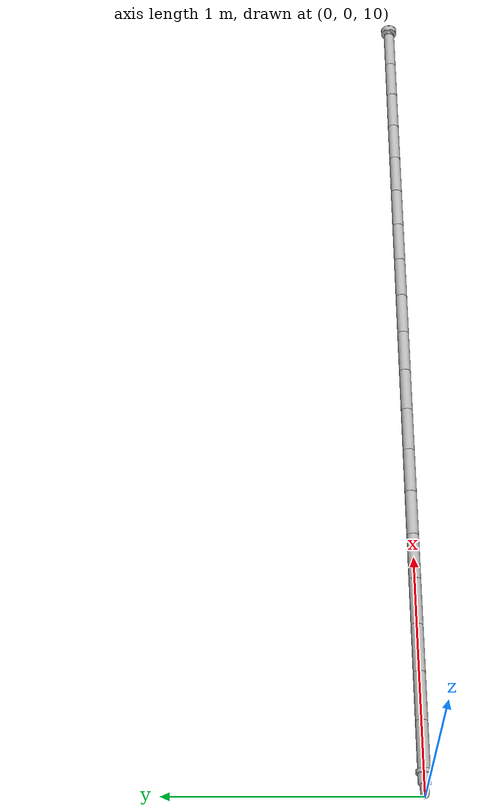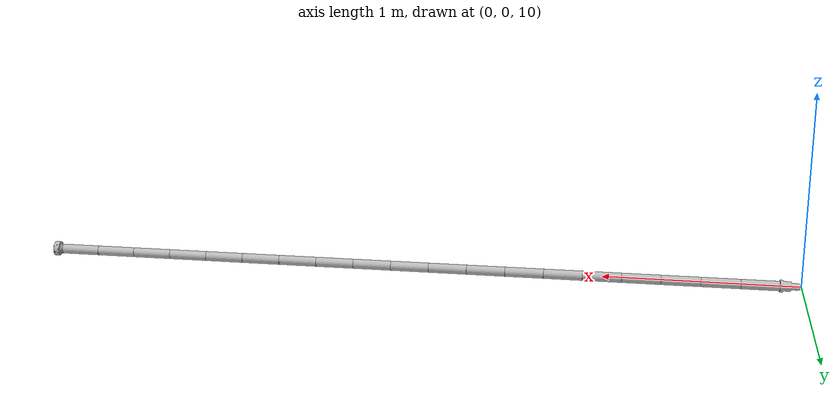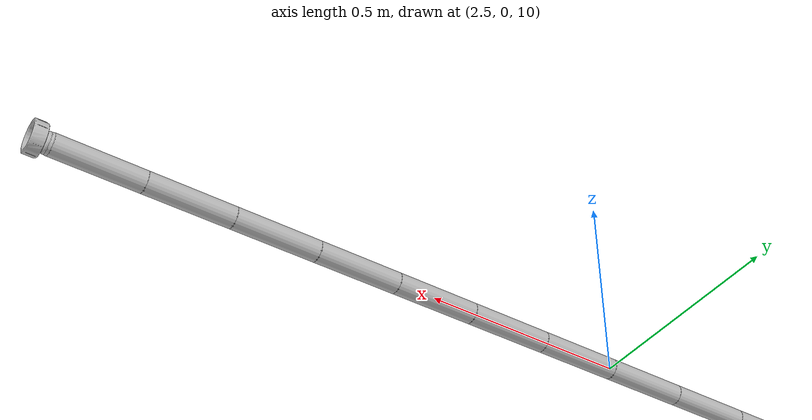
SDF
<?xml version="1.0" ?>
<sdf version="1.5">
  <model name="fire_hose_long">
    <pose>0 0 10 0.708 0 0</pose>
    <joint name="joint_01_world" type="revolute">
      <child>nozzle</child>
      <parent>world</parent>
      <axis>
        <xyz>0.500000 1.000000 0.200000</xyz>
        <dynamics>
          <damping>10.000000</damping>
          <friction>0.000000</friction>
        </dynamics>
        <use_parent_model_frame>true</use_parent_model_frame>
      </axis>
    </joint>
    <link name="nozzle">
      <pose>0.000000 0.000000 0.000000 0.000000 -0.000000 0.000000</pose>
      <inertial>
        <pose>0.000000 0.000000 0.000000 0.000000 -0.000000 0.000000</pose>
        <mass>0.100000</mass>
        <inertia>
          <ixx>0.010000</ixx>
          <ixy>0.000000</ixy>
          <ixz>0.000000</ixz>
          <iyy>0.010000</iyy>
          <iyz>0.000000</iyz>
          <izz>0.010000</izz>
        </inertia>
      </inertial>
      <collision name="nozzle_collision">
        <pose>-0.000000 0.000000 0.000000 0.000000 -0.000000 0.000000</pose>
        <geometry>
          <mesh>
            <scale>0.002540 0.002540 0.002540</scale>
            <uri>model://fire_hose_long/meshes/nozzle.stl</uri>
          </mesh>
        </geometry>
      </collision>
      <visual name="nozzle_vis">
        <pose>-0.000000 0.000000 0.000000 0.000000 -0.000000 0.000000</pose>
        <geometry>
          <mesh>
            <scale>0.002540 0.002540 0.002540</scale>
            <uri>model://fire_hose_long/meshes/nozzle.stl</uri>
          </mesh>
        </geometry>
      </visual>
      <velocity_decay />
    </link>
    <link name="sphere_01">
      <gravity>false</gravity>
      <pose>0.100000 0.000000 0.000000 0.000000 -0.000000 0.000000</pose>
      <inertial>
        <pose>0.000000 0.000000 0.000000 0.000000 -0.000000 0.000000</pose>
        <mass>0.100000</mass>
        <inertia>
          <ixx>0.010000</ixx>
          <ixy>0.000000</ixy>
          <ixz>0.000000</ixz>
          <iyy>0.010000</iyy>
          <iyz>0.000000</iyz>
          <izz>0.010000</izz>
        </inertia>
      </inertial>
      <collision name="sphere_01_collision">
        <pose>0.000000 0.000000 0.000000 0.000000 -0.000000 0.000000</pose>
        <geometry>
          <sphere>
            <radius>0.025000</radius>
          </sphere>
        </geometry>
      </collision>
      <visual name="sphere_01_vis">
        <pose>0.000000 0.000000 0.000000 0.000000 -0.000000 0.000000</pose>
        <geometry>
          <sphere>
            <radius>0.025000</radius>
          </sphere>
        </geometry>
      </visual>
      <velocity_decay />
    </link>
    <joint name="joint_01_1" type="revolute">
      <child>sphere_01</child>
      <parent>nozzle</parent>
      <axis>
        <xyz>0.000000 0.000000 1.000000</xyz>
        <limit>
          <lower>-0.700000</lower>
          <upper>0.700000</upper>
        </limit>
        <dynamics>
          <damping>10.000000</damping>
          <friction>0.000000</friction>
        </dynamics>
        <use_parent_model_frame>true</use_parent_model_frame>
      </axis>
    </joint>
    <link name="link_01">
      <gravity>false</gravity>
      <pose>0.100000 0.000000 0.000000 0.000000 -0.000000 0.000000</pose>
      <inertial>
        <pose>0.000000 0.000000 0.000000 0.000000 -0.000000 0.000000</pose>
        <mass>0.100000</mass>
        <inertia>
          <ixx>0.010000</ixx>
          <ixy>0.000000</ixy>
          <ixz>0.000000</ixz>
          <iyy>0.010000</iyy>
          <iyz>0.000000</iyz>
          <izz>0.010000</izz>
        </inertia>
      </inertial>
      <collision name="link_01_collision">
        <pose>0.100000 0.000000 0.000000 0.000000 1.570790 0.000000</pose>
        <geometry>
          <cylinder>
            <length>0.200000</length>
            <radius>0.025000</radius>
          </cylinder>
        </geometry>
      </collision>
      <visual name="link_01_vis">
        <pose>0.100000 0.000000 0.000000 0.000000 1.570790 0.000000</pose>
        <geometry>
          <cylinder>
            <length>0.200000</length>
            <radius>0.025000</radius>
          </cylinder>
        </geometry>
      </visual>
      <velocity_decay />
    </link>
    <joint name="joint_01_2" type="revolute">
      <child>link_01</child>
      <parent>sphere_01</parent>
      <axis>
        <xyz>0.000000 1.000000 0.000000</xyz>
        <limit>
          <lower>-0.700000</lower>
          <upper>0.700000</upper>
        </limit>
        <dynamics>
          <damping>10.000000</damping>
          <friction>0.000000</friction>
        </dynamics>
        <use_parent_model_frame>true</use_parent_model_frame>
      </axis>
    </joint>
    <link name="sphere_02">
      <gravity>false</gravity>
      <pose>0.300000 0.000000 0.000000 0.000000 -0.000000 0.000000</pose>
      <inertial>
        <pose>0.000000 0.000000 0.000000 0.000000 -0.000000 0.000000</pose>
        <mass>0.100000</mass>
        <inertia>
          <ixx>0.010000</ixx>
          <ixy>0.000000</ixy>
          <ixz>0.000000</ixz>
          <iyy>0.010000</iyy>
          <iyz>0.000000</iyz>
          <izz>0.010000</izz>
        </inertia>
      </inertial>
      <collision name="sphere_02_collision">
        <pose>0.000000 0.000000 0.000000 0.000000 -0.000000 0.000000</pose>
        <geometry>
          <sphere>
            <radius>0.025000</radius>
          </sphere>
        </geometry>
      </collision>
      <visual name="sphere_02_vis">
        <pose>0.000000 0.000000 0.000000 0.000000 -0.000000 0.000000</pose>
        <geometry>
          <sphere>
            <radius>0.025000</radius>
          </sphere>
        </geometry>
      </visual>
      <velocity_decay />
    </link>
    <joint name="joint_02_1" type="revolute">
      <child>sphere_02</child>
      <parent>link_01</parent>
      <axis>
        <xyz>0.000000 0.000000 1.000000</xyz>
        <limit>
          <lower>-0.700000</lower>
          <upper>0.700000</upper>
        </limit>
        <dynamics>
          <damping>10.000000</damping>
          <friction>0.000000</friction>
        </dynamics>
        <use_parent_model_frame>true</use_parent_model_frame>
      </axis>
    </joint>
    <link name="link_02">
      <gravity>false</gravity>
      <pose>0.300000 0.000000 0.000000 0.000000 -0.000000 0.000000</pose>
      <inertial>
        <pose>0.000000 0.000000 0.000000 0.000000 -0.000000 0.000000</pose>
        <mass>0.100000</mass>
        <inertia>
          <ixx>0.010000</ixx>
          <ixy>0.000000</ixy>
          <ixz>0.000000</ixz>
          <iyy>0.010000</iyy>
          <iyz>0.000000</iyz>
          <izz>0.010000</izz>
        </inertia>
      </inertial>
      <collision name="link_02_collision">
        <pose>0.100000 0.000000 0.000000 0.000000 1.570790 0.000000</pose>
        <geometry>
          <cylinder>
            <length>0.200000</length>
            <radius>0.025000</radius>
          </cylinder>
        </geometry>
      </collision>
      <visual name="link_02_vis">
        <pose>0.100000 0.000000 0.000000 0.000000 1.570790 0.000000</pose>
        <geometry>
          <cylinder>
            <length>0.200000</length>
            <radius>0.025000</radius>
          </cylinder>
        </geometry>
      </visual>
      <velocity_decay />
    </link>
    <joint name="joint_02_2" type="revolute">
      <child>link_02</child>
      <parent>sphere_02</parent>
      <axis>
        <xyz>0.000000 1.000000 0.000000</xyz>
        <limit>
          <lower>-0.700000</lower>
          <upper>0.700000</upper>
        </limit>
        <dynamics>
          <damping>10.000000</damping>
          <friction>0.000000</friction>
        </dynamics>
        <use_parent_model_frame>true</use_parent_model_frame>
      </axis>
    </joint>
    <link name="sphere_03">
      <gravity>false</gravity>
      <pose>0.500000 0.000000 0.000000 0.000000 -0.000000 0.000000</pose>
      <inertial>
        <pose>0.000000 0.000000 0.000000 0.000000 -0.000000 0.000000</pose>
        <mass>0.100000</mass>
        <inertia>
          <ixx>0.010000</ixx>
          <ixy>0.000000</ixy>
          <ixz>0.000000</ixz>
          <iyy>0.010000</iyy>
          <iyz>0.000000</iyz>
          <izz>0.010000</izz>
        </inertia>
      </inertial>
      <collision name="sphere_03_collision">
        <pose>0.000000 0.000000 0.000000 0.000000 -0.000000 0.000000</pose>
        <geometry>
          <sphere>
            <radius>0.025000</radius>
          </sphere>
        </geometry>
      </collision>
      <visual name="sphere_03_vis">
        <pose>0.000000 0.000000 0.000000 0.000000 -0.000000 0.000000</pose>
        <geometry>
          <sphere>
            <radius>0.025000</radius>
          </sphere>
        </geometry>
      </visual>
      <velocity_decay />
    </link>
    <joint name="joint_03_1" type="revolute">
      <child>sphere_03</child>
      <parent>link_02</parent>
      <axis>
        <xyz>0.000000 0.000000 1.000000</xyz>
        <limit>
          <lower>-0.700000</lower>
          <upper>0.700000</upper>
        </limit>
        <dynamics>
          <damping>10.000000</damping>
          <friction>0.000000</friction>
        </dynamics>
        <use_parent_model_frame>true</use_parent_model_frame>
      </axis>
    </joint>
    <link name="link_03">
      <gravity>false</gravity>
      <pose>0.500000 0.000000 0.000000 0.000000 -0.000000 0.000000</pose>
      <inertial>
        <pose>0.000000 0.000000 0.000000 0.000000 -0.000000 0.000000</pose>
        <mass>0.100000</mass>
        <inertia>
          <ixx>0.010000</ixx>
          <ixy>0.000000</ixy>
          <ixz>0.000000</ixz>
          <iyy>0.010000</iyy>
          <iyz>0.000000</iyz>
          <izz>0.010000</izz>
        </inertia>
      </inertial>
      <collision name="link_03_collision">
        <pose>0.100000 0.000000 0.000000 0.000000 1.570790 0.000000</pose>
        <geometry>
          <cylinder>
            <length>0.200000</length>
            <radius>0.025000</radius>
          </cylinder>
        </geometry>
      </collision>
      <visual name="link_03_vis">
        <pose>0.100000 0.000000 0.000000 0.000000 1.570790 0.000000</pose>
        <geometry>
          <cylinder>
            <length>0.200000</length>
            <radius>0.025000</radius>
          </cylinder>
        </geometry>
      </visual>
      <velocity_decay />
    </link>
    <joint name="joint_03_2" type="revolute">
      <child>link_03</child>
      <parent>sphere_03</parent>
      <axis>
        <xyz>0.000000 1.000000 0.000000</xyz>
        <limit>
          <lower>-0.700000</lower>
          <upper>0.700000</upper>
        </limit>
        <dynamics>
          <damping>10.000000</damping>
          <friction>0.000000</friction>
        </dynamics>
        <use_parent_model_frame>true</use_parent_model_frame>
      </axis>
    </joint>
    <link name="sphere_04">
      <gravity>false</gravity>
      <pose>0.700000 0.000000 0.000000 0.000000 -0.000000 0.000000</pose>
      <inertial>
        <pose>0.000000 0.000000 0.000000 0.000000 -0.000000 0.000000</pose>
        <mass>0.100000</mass>
        <inertia>
          <ixx>0.010000</ixx>
          <ixy>0.000000</ixy>
          <ixz>0.000000</ixz>
          <iyy>0.010000</iyy>
          <iyz>0.000000</iyz>
          <izz>0.010000</izz>
        </inertia>
      </inertial>
      <collision name="sphere_04_collision">
        <pose>0.000000 0.000000 0.000000 0.000000 -0.000000 0.000000</pose>
        <geometry>
          <sphere>
            <radius>0.025000</radius>
          </sphere>
        </geometry>
      </collision>
      <visual name="sphere_04_vis">
        <pose>0.000000 0.000000 0.000000 0.000000 -0.000000 0.000000</pose>
        <geometry>
          <sphere>
            <radius>0.025000</radius>
          </sphere>
        </geometry>
      </visual>
      <velocity_decay />
    </link>
    <joint name="joint_04_1" type="revolute">
      <child>sphere_04</child>
      <parent>link_03</parent>
      <axis>
        <xyz>0.000000 0.000000 1.000000</xyz>
        <limit>
          <lower>-0.700000</lower>
          <upper>0.700000</upper>
        </limit>
        <dynamics>
          <damping>10.000000</damping>
          <friction>0.000000</friction>
        </dynamics>
        <use_parent_model_frame>true</use_parent_model_frame>
      </axis>
    </joint>
    <link name="link_04">
      <gravity>false</gravity>
      <pose>0.700000 0.000000 0.000000 0.000000 -0.000000 0.000000</pose>
      <inertial>
        <pose>0.000000 0.000000 0.000000 0.000000 -0.000000 0.000000</pose>
        <mass>0.100000</mass>
        <inertia>
          <ixx>0.010000</ixx>
          <ixy>0.000000</ixy>
          <ixz>0.000000</ixz>
          <iyy>0.010000</iyy>
          <iyz>0.000000</iyz>
          <izz>0.010000</izz>
        </inertia>
      </inertial>
      <collision name="link_04_collision">
        <pose>0.100000 0.000000 0.000000 0.000000 1.570790 0.000000</pose>
        <geometry>
          <cylinder>
            <length>0.200000</length>
            <radius>0.025000</radius>
          </cylinder>
        </geometry>
      </collision>
      <visual name="link_04_vis">
        <pose>0.100000 0.000000 0.000000 0.000000 1.570790 0.000000</pose>
        <geometry>
          <cylinder>
            <length>0.200000</length>
            <radius>0.025000</radius>
          </cylinder>
        </geometry>
      </visual>
      <velocity_decay />
    </link>
    <joint name="joint_04_2" type="revolute">
      <child>link_04</child>
      <parent>sphere_04</parent>
      <axis>
        <xyz>0.000000 1.000000 0.000000</xyz>
        <limit>
          <lower>-0.700000</lower>
          <upper>0.700000</upper>
        </limit>
        <dynamics>
          <damping>10.000000</damping>
          <friction>0.000000</friction>
        </dynamics>
        <use_parent_model_frame>true</use_parent_model_frame>
      </axis>
    </joint>
    <link name="sphere_05">
      <gravity>false</gravity>
      <pose>0.900000 0.000000 0.000000 0.000000 -0.000000 0.000000</pose>
      <inertial>
        <pose>0.000000 0.000000 0.000000 0.000000 -0.000000 0.000000</pose>
        <mass>0.100000</mass>
        <inertia>
          <ixx>0.010000</ixx>
          <ixy>0.000000</ixy>
          <ixz>0.000000</ixz>
          <iyy>0.010000</iyy>
          <iyz>0.000000</iyz>
          <izz>0.010000</izz>
        </inertia>
      </inertial>
      <collision name="sphere_05_collision">
        <pose>0.000000 0.000000 0.000000 0.000000 -0.000000 0.000000</pose>
        <geometry>
          <sphere>
            <radius>0.025000</radius>
          </sphere>
        </geometry>
      </collision>
      <visual name="sphere_05_vis">
        <pose>0.000000 0.000000 0.000000 0.000000 -0.000000 0.000000</pose>
        <geometry>
          <sphere>
            <radius>0.025000</radius>
          </sphere>
        </geometry>
      </visual>
      <velocity_decay />
    </link>
    <joint name="joint_05_1" type="revolute">
      <child>sphere_05</child>
      <parent>link_04</parent>
      <axis>
        <xyz>0.000000 0.000000 1.000000</xyz>
        <limit>
          <lower>-0.700000</lower>
          <upper>0.700000</upper>
        </limit>
        <dynamics>
          <damping>10.000000</damping>
          <friction>0.000000</friction>
        </dynamics>
        <use_parent_model_frame>true</use_parent_model_frame>
      </axis>
    </joint>
    <link name="link_05">
      <gravity>false</gravity>
      <pose>0.900000 0.000000 0.000000 0.000000 -0.000000 0.000000</pose>
      <inertial>
        <pose>0.000000 0.000000 0.000000 0.000000 -0.000000 0.000000</pose>
        <mass>0.100000</mass>
        <inertia>
          <ixx>0.010000</ixx>
          <ixy>0.000000</ixy>
          <ixz>0.000000</ixz>
          <iyy>0.010000</iyy>
          <iyz>0.000000</iyz>
          <izz>0.010000</izz>
        </inertia>
      </inertial>
      <collision name="link_05_collision">
        <pose>0.100000 0.000000 0.000000 0.000000 1.570790 0.000000</pose>
        <geometry>
          <cylinder>
            <length>0.200000</length>
            <radius>0.025000</radius>
          </cylinder>
        </geometry>
      </collision>
      <visual name="link_05_vis">
        <pose>0.100000 0.000000 0.000000 0.000000 1.570790 0.000000</pose>
        <geometry>
          <cylinder>
            <length>0.200000</length>
            <radius>0.025000</radius>
          </cylinder>
        </geometry>
      </visual>
      <velocity_decay />
    </link>
    <joint name="joint_05_2" type="revolute">
      <child>link_05</child>
      <parent>sphere_05</parent>
      <axis>
        <xyz>0.000000 1.000000 0.000000</xyz>
        <limit>
          <lower>-0.700000</lower>
          <upper>0.700000</upper>
        </limit>
        <dynamics>
          <damping>10.000000</damping>
          <friction>0.000000</friction>
        </dynamics>
        <use_parent_model_frame>true</use_parent_model_frame>
      </axis>
    </joint>
    <link name="sphere_06">
      <gravity>false</gravity>
      <pose>1.100000 0.000000 0.000000 0.000000 -0.000000 0.000000</pose>
      <inertial>
        <pose>0.000000 0.000000 0.000000 0.000000 -0.000000 0.000000</pose>
        <mass>0.100000</mass>
        <inertia>
          <ixx>0.010000</ixx>
          <ixy>0.000000</ixy>
          <ixz>0.000000</ixz>
          <iyy>0.010000</iyy>
          <iyz>0.000000</iyz>
          <izz>0.010000</izz>
        </inertia>
      </inertial>
      <collision name="sphere_06_collision">
        <pose>0.000000 0.000000 0.000000 0.000000 -0.000000 0.000000</pose>
        <geometry>
          <sphere>
            <radius>0.025000</radius>
          </sphere>
        </geometry>
      </collision>
      <visual name="sphere_06_vis">
        <pose>0.000000 0.000000 0.000000 0.000000 -0.000000 0.000000</pose>
        <geometry>
          <sphere>
            <radius>0.025000</radius>
          </sphere>
        </geometry>
      </visual>
      <velocity_decay />
    </link>
    <joint name="joint_06_1" type="revolute">
      <child>sphere_06</child>
      <parent>link_05</parent>
      <axis>
        <xyz>0.000000 0.000000 1.000000</xyz>
        <limit>
          <lower>-0.700000</lower>
          <upper>0.700000</upper>
        </limit>
        <dynamics>
          <damping>10.000000</damping>
          <friction>0.000000</friction>
        </dynamics>
        <use_parent_model_frame>true</use_parent_model_frame>
      </axis>
    </joint>
    <link name="link_06">
      <gravity>false</gravity>
      <pose>1.100000 0.000000 0.000000 0.000000 -0.000000 0.000000</pose>
      <inertial>
        <pose>0.000000 0.000000 0.000000 0.000000 -0.000000 0.000000</pose>
        <mass>0.100000</mass>
        <inertia>
          <ixx>0.010000</ixx>
          <ixy>0.000000</ixy>
          <ixz>0.000000</ixz>
          <iyy>0.010000</iyy>
          <iyz>0.000000</iyz>
          <izz>0.010000</izz>
        </inertia>
      </inertial>
      <collision name="link_06_collision">
        <pose>0.100000 0.000000 0.000000 0.000000 1.570790 0.000000</pose>
        <geometry>
          <cylinder>
            <length>0.200000</length>
            <radius>0.025000</radius>
          </cylinder>
        </geometry>
      </collision>
      <visual name="link_06_vis">
        <pose>0.100000 0.000000 0.000000 0.000000 1.570790 0.000000</pose>
        <geometry>
          <cylinder>
            <length>0.200000</length>
            <radius>0.025000</radius>
          </cylinder>
        </geometry>
      </visual>
      <velocity_decay />
    </link>
    <joint name="joint_06_2" type="revolute">
      <child>link_06</child>
      <parent>sphere_06</parent>
      <axis>
        <xyz>0.000000 1.000000 0.000000</xyz>
        <limit>
          <lower>-0.700000</lower>
          <upper>0.700000</upper>
        </limit>
        <dynamics>
          <damping>10.000000</damping>
          <friction>0.000000</friction>
        </dynamics>
        <use_parent_model_frame>true</use_parent_model_frame>
      </axis>
    </joint>
    <link name="sphere_07">
      <gravity>false</gravity>
      <pose>1.300000 0.000000 0.000000 0.000000 -0.000000 0.000000</pose>
      <inertial>
        <pose>0.000000 0.000000 0.000000 0.000000 -0.000000 0.000000</pose>
        <mass>0.100000</mass>
        <inertia>
          <ixx>0.010000</ixx>
          <ixy>0.000000</ixy>
          <ixz>0.000000</ixz>
          <iyy>0.010000</iyy>
          <iyz>0.000000</iyz>
          <izz>0.010000</izz>
        </inertia>
      </inertial>
      <collision name="sphere_07_collision">
        <pose>0.000000 0.000000 0.000000 0.000000 -0.000000 0.000000</pose>
        <geometry>
          <sphere>
            <radius>0.025000</radius>
          </sphere>
        </geometry>
      </collision>
      <visual name="sphere_07_vis">
        <pose>0.000000 0.000000 0.000000 0.000000 -0.000000 0.000000</pose>
        <geometry>
          <sphere>
            <radius>0.025000</radius>
          </sphere>
        </geometry>
      </visual>
      <velocity_decay />
    </link>
    <joint name="joint_07_1" type="revolute">
      <child>sphere_07</child>
      <parent>link_06</parent>
      <axis>
        <xyz>0.000000 0.000000 1.000000</xyz>
        <limit>
          <lower>-0.700000</lower>
          <upper>0.700000</upper>
        </limit>
        <dynamics>
          <damping>10.000000</damping>
          <friction>0.000000</friction>
        </dynamics>
        <use_parent_model_frame>true</use_parent_model_frame>
      </axis>
    </joint>
    <link name="link_07">
      <gravity>false</gravity>
      <pose>1.300000 0.000000 0.000000 0.000000 -0.000000 0.000000</pose>
      <inertial>
        <pose>0.000000 0.000000 0.000000 0.000000 -0.000000 0.000000</pose>
        <mass>0.100000</mass>
        <inertia>
          <ixx>0.010000</ixx>
          <ixy>0.000000</ixy>
          <ixz>0.000000</ixz>
          <iyy>0.010000</iyy>
          <iyz>0.000000</iyz>
          <izz>0.010000</izz>
        </inertia>
      </inertial>
      <collision name="link_07_collision">
        <pose>0.100000 0.000000 0.000000 0.000000 1.570790 0.000000</pose>
        <geometry>
          <cylinder>
            <length>0.200000</length>
            <radius>0.025000</radius>
          </cylinder>
        </geometry>
      </collision>
      <visual name="link_07_vis">
        <pose>0.100000 0.000000 0.000000 0.000000 1.570790 0.000000</pose>
        <geometry>
          <cylinder>
            <length>0.200000</length>
            <radius>0.025000</radius>
          </cylinder>
        </geometry>
      </visual>
      <velocity_decay />
    </link>
    <joint name="joint_07_2" type="revolute">
      <child>link_07</child>
      <parent>sphere_07</parent>
      <axis>
        <xyz>0.000000 1.000000 0.000000</xyz>
        <limit>
          <lower>-0.700000</lower>
          <upper>0.700000</upper>
        </limit>
        <dynamics>
          <damping>10.000000</damping>
          <friction>0.000000</friction>
        </dynamics>
        <use_parent_model_frame>true</use_parent_model_frame>
      </axis>
    </joint>
    <link name="sphere_08">
      <gravity>false</gravity>
      <pose>1.500000 0.000000 0.000000 0.000000 -0.000000 0.000000</pose>
      <inertial>
        <pose>0.000000 0.000000 0.000000 0.000000 -0.000000 0.000000</pose>
        <mass>0.100000</mass>
        <inertia>
          <ixx>0.010000</ixx>
          <ixy>0.000000</ixy>
          <ixz>0.000000</ixz>
          <iyy>0.010000</iyy>
          <iyz>0.000000</iyz>
          <izz>0.010000</izz>
        </inertia>
      </inertial>
      <collision name="sphere_08_collision">
        <pose>0.000000 0.000000 0.000000 0.000000 -0.000000 0.000000</pose>
        <geometry>
          <sphere>
            <radius>0.025000</radius>
          </sphere>
        </geometry>
      </collision>
      <visual name="sphere_08_vis">
        <pose>0.000000 0.000000 0.000000 0.000000 -0.000000 0.000000</pose>
        <geometry>
          <sphere>
            <radius>0.025000</radius>
          </sphere>
        </geometry>
      </visual>
      <velocity_decay />
    </link>
    <joint name="joint_08_1" type="revolute">
      <child>sphere_08</child>
      <parent>link_07</parent>
      <axis>
        <xyz>0.000000 0.000000 1.000000</xyz>
        <limit>
          <lower>-0.700000</lower>
          <upper>0.700000</upper>
        </limit>
        <dynamics>
          <damping>10.000000</damping>
          <friction>0.000000</friction>
        </dynamics>
        <use_parent_model_frame>true</use_parent_model_frame>
      </axis>
    </joint>
    <link name="link_08">
      <gravity>false</gravity>
      <pose>1.500000 0.000000 0.000000 0.000000 -0.000000 0.000000</pose>
      <inertial>
        <pose>0.000000 0.000000 0.000000 0.000000 -0.000000 0.000000</pose>
        <mass>0.100000</mass>
        <inertia>
          <ixx>0.010000</ixx>
          <ixy>0.000000</ixy>
          <ixz>0.000000</ixz>
          <iyy>0.010000</iyy>
          <iyz>0.000000</iyz>
          <izz>0.010000</izz>
        </inertia>
      </inertial>
      <collision name="link_08_collision">
        <pose>0.100000 0.000000 0.000000 0.000000 1.570790 0.000000</pose>
        <geometry>
          <cylinder>
            <length>0.200000</length>
            <radius>0.025000</radius>
          </cylinder>
        </geometry>
      </collision>
      <visual name="link_08_vis">
        <pose>0.100000 0.000000 0.000000 0.000000 1.570790 0.000000</pose>
        <geometry>
          <cylinder>
            <length>0.200000</length>
            <radius>0.025000</radius>
          </cylinder>
        </geometry>
      </visual>
      <velocity_decay />
    </link>
    <joint name="joint_08_2" type="revolute">
      <child>link_08</child>
      <parent>sphere_08</parent>
      <axis>
        <xyz>0.000000 1.000000 0.000000</xyz>
        <limit>
          <lower>-0.700000</lower>
          <upper>0.700000</upper>
        </limit>
        <dynamics>
          <damping>10.000000</damping>
          <friction>0.000000</friction>
        </dynamics>
        <use_parent_model_frame>true</use_parent_model_frame>
      </axis>
    </joint>
    <link name="sphere_09">
      <gravity>false</gravity>
      <pose>1.700000 0.000000 0.000000 0.000000 -0.000000 0.000000</pose>
      <inertial>
        <pose>0.000000 0.000000 0.000000 0.000000 -0.000000 0.000000</pose>
        <mass>0.100000</mass>
        <inertia>
          <ixx>0.010000</ixx>
          <ixy>0.000000</ixy>
          <ixz>0.000000</ixz>
          <iyy>0.010000</iyy>
          <iyz>0.000000</iyz>
          <izz>0.010000</izz>
        </inertia>
      </inertial>
      <collision name="sphere_09_collision">
        <pose>0.000000 0.000000 0.000000 0.000000 -0.000000 0.000000</pose>
        <geometry>
          <sphere>
            <radius>0.025000</radius>
          </sphere>
        </geometry>
      </collision>
      <visual name="sphere_09_vis">
        <pose>0.000000 0.000000 0.000000 0.000000 -0.000000 0.000000</pose>
        <geometry>
          <sphere>
            <radius>0.025000</radius>
          </sphere>
        </geometry>
      </visual>
      <velocity_decay />
    </link>
    <joint name="joint_09_1" type="revolute">
      <child>sphere_09</child>
      <parent>link_08</parent>
      <axis>
        <xyz>0.000000 0.000000 1.000000</xyz>
        <limit>
          <lower>-0.700000</lower>
          <upper>0.700000</upper>
        </limit>
        <dynamics>
          <damping>10.000000</damping>
          <friction>0.000000</friction>
        </dynamics>
        <use_parent_model_frame>true</use_parent_model_frame>
      </axis>
    </joint>
    <link name="link_09">
      <gravity>false</gravity>
      <pose>1.700000 0.000000 0.000000 0.000000 -0.000000 0.000000</pose>
      <inertial>
        <pose>0.000000 0.000000 0.000000 0.000000 -0.000000 0.000000</pose>
        <mass>0.100000</mass>
        <inertia>
          <ixx>0.010000</ixx>
          <ixy>0.000000</ixy>
          <ixz>0.000000</ixz>
          <iyy>0.010000</iyy>
          <iyz>0.000000</iyz>
          <izz>0.010000</izz>
        </inertia>
      </inertial>
      <collision name="link_09_collision">
        <pose>0.100000 0.000000 0.000000 0.000000 1.570790 0.000000</pose>
        <geometry>
          <cylinder>
            <length>0.200000</length>
            <radius>0.025000</radius>
          </cylinder>
        </geometry>
      </collision>
      <visual name="link_09_vis">
        <pose>0.100000 0.000000 0.000000 0.000000 1.570790 0.000000</pose>
        <geometry>
          <cylinder>
            <length>0.200000</length>
            <radius>0.025000</radius>
          </cylinder>
        </geometry>
      </visual>
      <velocity_decay />
    </link>
    <joint name="joint_09_2" type="revolute">
      <child>link_09</child>
      <parent>sphere_09</parent>
      <axis>
        <xyz>0.000000 1.000000 0.000000</xyz>
        <limit>
          <lower>-0.700000</lower>
          <upper>0.700000</upper>
        </limit>
        <dynamics>
          <damping>10.000000</damping>
          <friction>0.000000</friction>
        </dynamics>
        <use_parent_model_frame>true</use_parent_model_frame>
      </axis>
    </joint>
    <link name="sphere_10">
      <gravity>false</gravity>
      <pose>1.900000 0.000000 0.000000 0.000000 -0.000000 0.000000</pose>
      <inertial>
        <pose>0.000000 0.000000 0.000000 0.000000 -0.000000 0.000000</pose>
        <mass>0.100000</mass>
        <inertia>
          <ixx>0.010000</ixx>
          <ixy>0.000000</ixy>
          <ixz>0.000000</ixz>
          <iyy>0.010000</iyy>
          <iyz>0.000000</iyz>
          <izz>0.010000</izz>
        </inertia>
      </inertial>
      <collision name="sphere_10_collision">
        <pose>0.000000 0.000000 0.000000 0.000000 -0.000000 0.000000</pose>
        <geometry>
          <sphere>
            <radius>0.025000</radius>
          </sphere>
        </geometry>
      </collision>
      <visual name="sphere_10_vis">
        <pose>0.000000 0.000000 0.000000 0.000000 -0.000000 0.000000</pose>
        <geometry>
          <sphere>
            <radius>0.025000</radius>
          </sphere>
        </geometry>
      </visual>
      <velocity_decay />
    </link>
    <joint name="joint_10_1" type="revolute">
      <child>sphere_10</child>
      <parent>link_09</parent>
      <axis>
        <xyz>0.000000 0.000000 1.000000</xyz>
        <limit>
          <lower>-0.700000</lower>
          <upper>0.700000</upper>
        </limit>
        <dynamics>
          <damping>10.000000</damping>
          <friction>0.000000</friction>
        </dynamics>
        <use_parent_model_frame>true</use_parent_model_frame>
      </axis>
    </joint>
    <link name="link_10">
      <gravity>false</gravity>
      <pose>1.900000 0.000000 0.000000 0.000000 -0.000000 0.000000</pose>
      <inertial>
        <pose>0.000000 0.000000 0.000000 0.000000 -0.000000 0.000000</pose>
        <mass>0.100000</mass>
        <inertia>
          <ixx>0.010000</ixx>
          <ixy>0.000000</ixy>
          <ixz>0.000000</ixz>
          <iyy>0.010000</iyy>
          <iyz>0.000000</iyz>
          <izz>0.010000</izz>
        </inertia>
      </inertial>
      <collision name="link_10_collision">
        <pose>0.100000 0.000000 0.000000 0.000000 1.570790 0.000000</pose>
        <geometry>
          <cylinder>
            <length>0.200000</length>
            <radius>0.025000</radius>
          </cylinder>
        </geometry>
      </collision>
      <visual name="link_10_vis">
        <pose>0.100000 0.000000 0.000000 0.000000 1.570790 0.000000</pose>
        <geometry>
          <cylinder>
            <length>0.200000</length>
            <radius>0.025000</radius>
          </cylinder>
        </geometry>
      </visual>
      <velocity_decay />
    </link>
    <joint name="joint_10_2" type="revolute">
      <child>link_10</child>
      <parent>sphere_10</parent>
      <axis>
        <xyz>0.000000 1.000000 0.000000</xyz>
        <limit>
          <lower>-0.700000</lower>
          <upper>0.700000</upper>
        </limit>
        <dynamics>
          <damping>10.000000</damping>
          <friction>0.000000</friction>
        </dynamics>
        <use_parent_model_frame>true</use_parent_model_frame>
      </axis>
    </joint>
    <link name="sphere_11">
      <gravity>false</gravity>
      <pose>2.100000 0.000000 0.000000 0.000000 -0.000000 0.000000</pose>
      <inertial>
        <pose>0.000000 0.000000 0.000000 0.000000 -0.000000 0.000000</pose>
        <mass>0.100000</mass>
        <inertia>
          <ixx>0.010000</ixx>
          <ixy>0.000000</ixy>
          <ixz>0.000000</ixz>
          <iyy>0.010000</iyy>
          <iyz>0.000000</iyz>
          <izz>0.010000</izz>
        </inertia>
      </inertial>
      <collision name="sphere_11_collision">
        <pose>0.000000 0.000000 0.000000 0.000000 -0.000000 0.000000</pose>
        <geometry>
          <sphere>
            <radius>0.025000</radius>
          </sphere>
        </geometry>
      </collision>
      <visual name="sphere_11_vis">
        <pose>0.000000 0.000000 0.000000 0.000000 -0.000000 0.000000</pose>
        <geometry>
          <sphere>
            <radius>0.025000</radius>
          </sphere>
        </geometry>
      </visual>
      <velocity_decay />
    </link>
    <joint name="joint_11_1" type="revolute">
      <child>sphere_11</child>
      <parent>link_10</parent>
      <axis>
        <xyz>0.000000 0.000000 1.000000</xyz>
        <limit>
          <lower>-0.700000</lower>
          <upper>0.700000</upper>
        </limit>
        <dynamics>
          <damping>10.000000</damping>
          <friction>0.000000</friction>
        </dynamics>
        <use_parent_model_frame>true</use_parent_model_frame>
      </axis>
    </joint>
    <link name="link_11">
      <gravity>false</gravity>
      <pose>2.100000 0.000000 0.000000 0.000000 -0.000000 0.000000</pose>
      <inertial>
        <pose>0.000000 0.000000 0.000000 0.000000 -0.000000 0.000000</pose>
        <mass>0.100000</mass>
        <inertia>
          <ixx>0.010000</ixx>
          <ixy>0.000000</ixy>
          <ixz>0.000000</ixz>
          <iyy>0.010000</iyy>
          <iyz>0.000000</iyz>
          <izz>0.010000</izz>
        </inertia>
      </inertial>
      <collision name="link_11_collision">
        <pose>0.100000 0.000000 0.000000 0.000000 1.570790 0.000000</pose>
        <geometry>
          <cylinder>
            <length>0.200000</length>
            <radius>0.025000</radius>
          </cylinder>
        </geometry>
      </collision>
      <visual name="link_11_vis">
        <pose>0.100000 0.000000 0.000000 0.000000 1.570790 0.000000</pose>
        <geometry>
          <cylinder>
            <length>0.200000</length>
            <radius>0.025000</radius>
          </cylinder>
        </geometry>
      </visual>
      <velocity_decay />
    </link>
    <joint name="joint_11_2" type="revolute">
      <child>link_11</child>
      <parent>sphere_11</parent>
      <axis>
        <xyz>0.000000 1.000000 0.000000</xyz>
        <limit>
          <lower>-0.700000</lower>
          <upper>0.700000</upper>
        </limit>
        <dynamics>
          <damping>10.000000</damping>
          <friction>0.000000</friction>
        </dynamics>
        <use_parent_model_frame>true</use_parent_model_frame>
      </axis>
    </joint>
    <link name="sphere_12">
      <gravity>false</gravity>
      <pose>2.300000 0.000000 0.000000 0.000000 -0.000000 0.000000</pose>
      <inertial>
        <pose>0.000000 0.000000 0.000000 0.000000 -0.000000 0.000000</pose>
        <mass>0.100000</mass>
        <inertia>
          <ixx>0.010000</ixx>
          <ixy>0.000000</ixy>
          <ixz>0.000000</ixz>
          <iyy>0.010000</iyy>
          <iyz>0.000000</iyz>
          <izz>0.010000</izz>
        </inertia>
      </inertial>
      <collision name="sphere_12_collision">
        <pose>0.000000 0.000000 0.000000 0.000000 -0.000000 0.000000</pose>
        <geometry>
          <sphere>
            <radius>0.025000</radius>
          </sphere>
        </geometry>
      </collision>
      <visual name="sphere_12_vis">
        <pose>0.000000 0.000000 0.000000 0.000000 -0.000000 0.000000</pose>
        <geometry>
          <sphere>
            <radius>0.025000</radius>
          </sphere>
        </geometry>
      </visual>
      <velocity_decay />
    </link>
    <joint name="joint_12_1" type="revolute">
      <child>sphere_12</child>
      <parent>link_11</parent>
      <axis>
        <xyz>0.000000 0.000000 1.000000</xyz>
        <limit>
          <lower>-0.700000</lower>
          <upper>0.700000</upper>
        </limit>
        <dynamics>
          <damping>10.000000</damping>
          <friction>0.000000</friction>
        </dynamics>
        <use_parent_model_frame>true</use_parent_model_frame>
      </axis>
    </joint>
    <link name="link_12">
      <gravity>false</gravity>
      <pose>2.300000 0.000000 0.000000 0.000000 -0.000000 0.000000</pose>
      <inertial>
        <pose>0.000000 0.000000 0.000000 0.000000 -0.000000 0.000000</pose>
        <mass>0.100000</mass>
        <inertia>
          <ixx>0.010000</ixx>
          <ixy>0.000000</ixy>
          <ixz>0.000000</ixz>
          <iyy>0.010000</iyy>
          <iyz>0.000000</iyz>
          <izz>0.010000</izz>
        </inertia>
      </inertial>
      <collision name="link_12_collision">
        <pose>0.100000 0.000000 0.000000 0.000000 1.570790 0.000000</pose>
        <geometry>
          <cylinder>
            <length>0.200000</length>
            <radius>0.025000</radius>
          </cylinder>
        </geometry>
      </collision>
      <visual name="link_12_vis">
        <pose>0.100000 0.000000 0.000000 0.000000 1.570790 0.000000</pose>
        <geometry>
          <cylinder>
            <length>0.200000</length>
            <radius>0.025000</radius>
          </cylinder>
        </geometry>
      </visual>
      <velocity_decay />
    </link>
    <joint name="joint_12_2" type="revolute">
      <child>link_12</child>
      <parent>sphere_12</parent>
      <axis>
        <xyz>0.000000 1.000000 0.000000</xyz>
        <limit>
          <lower>-0.700000</lower>
          <upper>0.700000</upper>
        </limit>
        <dynamics>
          <damping>10.000000</damping>
          <friction>0.000000</friction>
        </dynamics>
        <use_parent_model_frame>true</use_parent_model_frame>
      </axis>
    </joint>
    <link name="sphere_13">
      <gravity>false</gravity>
      <pose>2.500000 0.000000 0.000000 0.000000 -0.000000 0.000000</pose>
      <inertial>
        <pose>0.000000 0.000000 0.000000 0.000000 -0.000000 0.000000</pose>
        <mass>0.100000</mass>
        <inertia>
          <ixx>0.010000</ixx>
          <ixy>0.000000</ixy>
          <ixz>0.000000</ixz>
          <iyy>0.010000</iyy>
          <iyz>0.000000</iyz>
          <izz>0.010000</izz>
        </inertia>
      </inertial>
      <collision name="sphere_13_collision">
        <pose>0.000000 0.000000 0.000000 0.000000 -0.000000 0.000000</pose>
        <geometry>
          <sphere>
            <radius>0.025000</radius>
          </sphere>
        </geometry>
      </collision>
      <visual name="sphere_13_vis">
        <pose>0.000000 0.000000 0.000000 0.000000 -0.000000 0.000000</pose>
        <geometry>
          <sphere>
            <radius>0.025000</radius>
          </sphere>
        </geometry>
      </visual>
      <velocity_decay />
    </link>
    <joint name="joint_13_1" type="revolute">
      <child>sphere_13</child>
      <parent>link_12</parent>
      <axis>
        <xyz>0.000000 0.000000 1.000000</xyz>
        <limit>
          <lower>-0.700000</lower>
          <upper>0.700000</upper>
        </limit>
        <dynamics>
          <damping>10.000000</damping>
          <friction>0.000000</friction>
        </dynamics>
        <use_parent_model_frame>true</use_parent_model_frame>
      </axis>
    </joint>
    <link name="link_13">
      <gravity>false</gravity>
      <pose>2.500000 0.000000 0.000000 0.000000 -0.000000 0.000000</pose>
      <inertial>
        <pose>0.000000 0.000000 0.000000 0.000000 -0.000000 0.000000</pose>
        <mass>0.100000</mass>
        <inertia>
          <ixx>0.010000</ixx>
          <ixy>0.000000</ixy>
          <ixz>0.000000</ixz>
          <iyy>0.010000</iyy>
          <iyz>0.000000</iyz>
          <izz>0.010000</izz>
        </inertia>
      </inertial>
      <collision name="link_13_collision">
        <pose>0.100000 0.000000 0.000000 0.000000 1.570790 0.000000</pose>
        <geometry>
          <cylinder>
            <length>0.200000</length>
            <radius>0.025000</radius>
          </cylinder>
        </geometry>
      </collision>
      <visual name="link_13_vis">
        <pose>0.100000 0.000000 0.000000 0.000000 1.570790 0.000000</pose>
        <geometry>
          <cylinder>
            <length>0.200000</length>
            <radius>0.025000</radius>
          </cylinder>
        </geometry>
      </visual>
      <velocity_decay />
    </link>
    <joint name="joint_13_2" type="revolute">
      <child>link_13</child>
      <parent>sphere_13</parent>
      <axis>
        <xyz>0.000000 1.000000 0.000000</xyz>
        <limit>
          <lower>-0.700000</lower>
          <upper>0.700000</upper>
        </limit>
        <dynamics>
          <damping>10.000000</damping>
          <friction>0.000000</friction>
        </dynamics>
        <use_parent_model_frame>true</use_parent_model_frame>
      </axis>
    </joint>
    <link name="sphere_14">
      <gravity>false</gravity>
      <pose>2.700000 0.000000 0.000000 0.000000 -0.000000 0.000000</pose>
      <inertial>
        <pose>0.000000 0.000000 0.000000 0.000000 -0.000000 0.000000</pose>
        <mass>0.100000</mass>
        <inertia>
          <ixx>0.010000</ixx>
          <ixy>0.000000</ixy>
          <ixz>0.000000</ixz>
          <iyy>0.010000</iyy>
          <iyz>0.000000</iyz>
          <izz>0.010000</izz>
        </inertia>
      </inertial>
      <collision name="sphere_14_collision">
        <pose>0.000000 0.000000 0.000000 0.000000 -0.000000 0.000000</pose>
        <geometry>
          <sphere>
            <radius>0.025000</radius>
          </sphere>
        </geometry>
      </collision>
      <visual name="sphere_14_vis">
        <pose>0.000000 0.000000 0.000000 0.000000 -0.000000 0.000000</pose>
        <geometry>
          <sphere>
            <radius>0.025000</radius>
          </sphere>
        </geometry>
      </visual>
      <velocity_decay />
    </link>
    <joint name="joint_14_1" type="revolute">
      <child>sphere_14</child>
      <parent>link_13</parent>
      <axis>
        <xyz>0.000000 0.000000 1.000000</xyz>
        <limit>
          <lower>-0.700000</lower>
          <upper>0.700000</upper>
        </limit>
        <dynamics>
          <damping>10.000000</damping>
          <friction>0.000000</friction>
        </dynamics>
        <use_parent_model_frame>true</use_parent_model_frame>
      </axis>
    </joint>
    <link name="link_14">
      <gravity>false</gravity>
      <pose>2.700000 0.000000 0.000000 0.000000 -0.000000 0.000000</pose>
      <inertial>
        <pose>0.000000 0.000000 0.000000 0.000000 -0.000000 0.000000</pose>
        <mass>0.100000</mass>
        <inertia>
          <ixx>0.010000</ixx>
          <ixy>0.000000</ixy>
          <ixz>0.000000</ixz>
          <iyy>0.010000</iyy>
          <iyz>0.000000</iyz>
          <izz>0.010000</izz>
        </inertia>
      </inertial>
      <collision name="link_14_collision">
        <pose>0.100000 0.000000 0.000000 0.000000 1.570790 0.000000</pose>
        <geometry>
          <cylinder>
            <length>0.200000</length>
            <radius>0.025000</radius>
          </cylinder>
        </geometry>
      </collision>
      <visual name="link_14_vis">
        <pose>0.100000 0.000000 0.000000 0.000000 1.570790 0.000000</pose>
        <geometry>
          <cylinder>
            <length>0.200000</length>
            <radius>0.025000</radius>
          </cylinder>
        </geometry>
      </visual>
      <velocity_decay />
    </link>
    <joint name="joint_14_2" type="revolute">
      <child>link_14</child>
      <parent>sphere_14</parent>
      <axis>
        <xyz>0.000000 1.000000 0.000000</xyz>
        <limit>
          <lower>-0.700000</lower>
          <upper>0.700000</upper>
        </limit>
        <dynamics>
          <damping>10.000000</damping>
          <friction>0.000000</friction>
        </dynamics>
        <use_parent_model_frame>true</use_parent_model_frame>
      </axis>
    </joint>
    <link name="sphere_15">
      <gravity>false</gravity>
      <pose>2.900000 0.000000 0.000000 0.000000 -0.000000 0.000000</pose>
      <inertial>
        <pose>0.000000 0.000000 0.000000 0.000000 -0.000000 0.000000</pose>
        <mass>0.100000</mass>
        <inertia>
          <ixx>0.010000</ixx>
          <ixy>0.000000</ixy>
          <ixz>0.000000</ixz>
          <iyy>0.010000</iyy>
          <iyz>0.000000</iyz>
          <izz>0.010000</izz>
        </inertia>
      </inertial>
      <collision name="sphere_15_collision">
        <pose>0.000000 0.000000 0.000000 0.000000 -0.000000 0.000000</pose>
        <geometry>
          <sphere>
            <radius>0.025000</radius>
          </sphere>
        </geometry>
      </collision>
      <visual name="sphere_15_vis">
        <pose>0.000000 0.000000 0.000000 0.000000 -0.000000 0.000000</pose>
        <geometry>
          <sphere>
            <radius>0.025000</radius>
          </sphere>
        </geometry>
      </visual>
      <velocity_decay />
    </link>
    <joint name="joint_15_1" type="revolute">
      <child>sphere_15</child>
      <parent>link_14</parent>
      <axis>
        <xyz>0.000000 0.000000 1.000000</xyz>
        <limit>
          <lower>-0.700000</lower>
          <upper>0.700000</upper>
        </limit>
        <dynamics>
          <damping>10.000000</damping>
          <friction>0.000000</friction>
        </dynamics>
        <use_parent_model_frame>true</use_parent_model_frame>
      </axis>
    </joint>
    <link name="link_15">
      <gravity>false</gravity>
      <pose>2.900000 0.000000 0.000000 0.000000 -0.000000 0.000000</pose>
      <inertial>
        <pose>0.000000 0.000000 0.000000 0.000000 -0.000000 0.000000</pose>
        <mass>0.100000</mass>
        <inertia>
          <ixx>0.010000</ixx>
          <ixy>0.000000</ixy>
          <ixz>0.000000</ixz>
          <iyy>0.010000</iyy>
          <iyz>0.000000</iyz>
          <izz>0.010000</izz>
        </inertia>
      </inertial>
      <collision name="link_15_collision">
        <pose>0.100000 0.000000 0.000000 0.000000 1.570790 0.000000</pose>
        <geometry>
          <cylinder>
            <length>0.200000</length>
            <radius>0.025000</radius>
          </cylinder>
        </geometry>
      </collision>
      <visual name="link_15_vis">
        <pose>0.100000 0.000000 0.000000 0.000000 1.570790 0.000000</pose>
        <geometry>
          <cylinder>
            <length>0.200000</length>
            <radius>0.025000</radius>
          </cylinder>
        </geometry>
      </visual>
      <velocity_decay />
    </link>
    <joint name="joint_15_2" type="revolute">
      <child>link_15</child>
      <parent>sphere_15</parent>
      <axis>
        <xyz>0.000000 1.000000 0.000000</xyz>
        <limit>
          <lower>-0.700000</lower>
          <upper>0.700000</upper>
        </limit>
        <dynamics>
          <damping>10.000000</damping>
          <friction>0.000000</friction>
        </dynamics>
        <use_parent_model_frame>true</use_parent_model_frame>
      </axis>
    </joint>
    <link name="sphere_16">
      <gravity>false</gravity>
      <pose>3.1000000 0.000000 0.000000 0.000000 -0.000000 0.000000</pose>
      <inertial>
        <pose>0.000000 0.000000 0.000000 0.000000 -0.000000 0.000000</pose>
        <mass>0.100000</mass>
        <inertia>
          <ixx>0.010000</ixx>
          <ixy>0.000000</ixy>
          <ixz>0.000000</ixz>
          <iyy>0.010000</iyy>
          <iyz>0.000000</iyz>
          <izz>0.010000</izz>
        </inertia>
      </inertial>
      <collision name="sphere_16_collision">
        <pose>0.000000 0.000000 0.000000 0.000000 -0.000000 0.000000</pose>
        <geometry>
          <sphere>
            <radius>0.025000</radius>
          </sphere>
        </geometry>
      </collision>
      <visual name="sphere_16_vis">
        <pose>0.000000 0.000000 0.000000 0.000000 -0.000000 0.000000</pose>
        <geometry>
          <sphere>
            <radius>0.025000</radius>
          </sphere>
        </geometry>
      </visual>
      <velocity_decay />
    </link>
    <joint name="joint_16_1" type="revolute">
      <child>sphere_16</child>
      <parent>link_15</parent>
      <axis>
        <xyz>0.000000 0.000000 1.000000</xyz>
        <limit>
          <lower>-0.700000</lower>
          <upper>0.700000</upper>
        </limit>
        <dynamics>
          <damping>10.000000</damping>
          <friction>0.000000</friction>
        </dynamics>
        <use_parent_model_frame>true</use_parent_model_frame>
      </axis>
    </joint>
    <link name="link_16">
      <gravity>false</gravity>
      <pose>3.1000000 0.000000 0.000000 0.000000 -0.000000 0.000000</pose>
      <inertial>
        <pose>0.000000 0.000000 0.000000 0.000000 -0.000000 0.000000</pose>
        <mass>0.100000</mass>
        <inertia>
          <ixx>0.010000</ixx>
          <ixy>0.000000</ixy>
          <ixz>0.000000</ixz>
          <iyy>0.010000</iyy>
          <iyz>0.000000</iyz>
          <izz>0.010000</izz>
        </inertia>
      </inertial>
      <collision name="link_16_collision">
        <pose>0.100000 0.000000 0.000000 0.000000 1.570790 0.000000</pose>
        <geometry>
          <cylinder>
            <length>0.200000</length>
            <radius>0.025000</radius>
          </cylinder>
        </geometry>
      </collision>
      <visual name="link_16_vis">
        <pose>0.100000 0.000000 0.000000 0.000000 1.570790 0.000000</pose>
        <geometry>
          <cylinder>
            <length>0.200000</length>
            <radius>0.025000</radius>
          </cylinder>
        </geometry>
      </visual>
      <velocity_decay />
    </link>
    <joint name="joint_16_2" type="revolute">
      <child>link_16</child>
      <parent>sphere_16</parent>
      <axis>
        <xyz>0.000000 1.000000 0.000000</xyz>
        <limit>
          <lower>-0.700000</lower>
          <upper>0.700000</upper>
        </limit>
        <dynamics>
          <damping>10.000000</damping>
          <friction>0.000000</friction>
        </dynamics>
        <use_parent_model_frame>true</use_parent_model_frame>
      </axis>
    </joint>
    <link name="sphere_17">
      <gravity>false</gravity>
      <pose>3.3000000 0.000000 0.000000 0.000000 -0.000000 0.000000</pose>
      <inertial>
        <pose>0.000000 0.000000 0.000000 0.000000 -0.000000 0.000000</pose>
        <mass>0.100000</mass>
        <inertia>
          <ixx>0.010000</ixx>
          <ixy>0.000000</ixy>
          <ixz>0.000000</ixz>
          <iyy>0.010000</iyy>
          <iyz>0.000000</iyz>
          <izz>0.010000</izz>
        </inertia>
      </inertial>
      <collision name="sphere_17_collision">
        <pose>0.000000 0.000000 0.000000 0.000000 -0.000000 0.000000</pose>
        <geometry>
          <sphere>
            <radius>0.025000</radius>
          </sphere>
        </geometry>
      </collision>
      <visual name="sphere_17_vis">
        <pose>0.000000 0.000000 0.000000 0.000000 -0.000000 0.000000</pose>
        <geometry>
          <sphere>
            <radius>0.025000</radius>
          </sphere>
        </geometry>
      </visual>
      <velocity_decay />
    </link>
    <joint name="joint_17_1" type="revolute">
      <child>sphere_17</child>
      <parent>link_16</parent>
      <axis>
        <xyz>0.000000 0.000000 1.000000</xyz>
        <limit>
          <lower>-0.700000</lower>
          <upper>0.700000</upper>
        </limit>
        <dynamics>
          <damping>10.000000</damping>
          <friction>0.000000</friction>
        </dynamics>
        <use_parent_model_frame>true</use_parent_model_frame>
      </axis>
    </joint>
    <link name="link_17">
      <gravity>false</gravity>
      <pose>3.3000000 0.000000 0.000000 0.000000 -0.000000 0.000000</pose>
      <inertial>
        <pose>0.000000 0.000000 0.000000 0.000000 -0.000000 0.000000</pose>
        <mass>0.100000</mass>
        <inertia>
          <ixx>0.010000</ixx>
          <ixy>0.000000</ixy>
          <ixz>0.000000</ixz>
          <iyy>0.010000</iyy>
          <iyz>0.000000</iyz>
          <izz>0.010000</izz>
        </inertia>
      </inertial>
      <collision name="link_17_collision">
        <pose>0.100000 0.000000 0.000000 0.000000 1.570790 0.000000</pose>
        <geometry>
          <cylinder>
            <length>0.200000</length>
            <radius>0.025000</radius>
          </cylinder>
        </geometry>
      </collision>
      <visual name="link_17_vis">
        <pose>0.100000 0.000000 0.000000 0.000000 1.570790 0.000000</pose>
        <geometry>
          <cylinder>
            <length>0.200000</length>
            <radius>0.025000</radius>
          </cylinder>
        </geometry>
      </visual>
      <velocity_decay />
    </link>
    <joint name="joint_17_2" type="revolute">
      <child>link_17</child>
      <parent>sphere_17</parent>
      <axis>
        <xyz>0.000000 1.000000 0.000000</xyz>
        <limit>
          <lower>-0.700000</lower>
          <upper>0.700000</upper>
        </limit>
        <dynamics>
          <damping>10.000000</damping>
          <friction>0.000000</friction>
        </dynamics>
        <use_parent_model_frame>true</use_parent_model_frame>
      </axis>
    </joint>
    <link name="sphere_18">
      <gravity>false</gravity>
      <pose>3.5000000 0.000000 0.000000 0.000000 -0.000000 0.000000</pose>
      <inertial>
        <pose>0.000000 0.000000 0.000000 0.000000 -0.000000 0.000000</pose>
        <mass>0.100000</mass>
        <inertia>
          <ixx>0.010000</ixx>
          <ixy>0.000000</ixy>
          <ixz>0.000000</ixz>
          <iyy>0.010000</iyy>
          <iyz>0.000000</iyz>
          <izz>0.010000</izz>
        </inertia>
      </inertial>
      <collision name="sphere_18_collision">
        <pose>0.000000 0.000000 0.000000 0.000000 -0.000000 0.000000</pose>
        <geometry>
          <sphere>
            <radius>0.025000</radius>
          </sphere>
        </geometry>
      </collision>
      <visual name="sphere_18_vis">
        <pose>0.000000 0.000000 0.000000 0.000000 -0.000000 0.000000</pose>
        <geometry>
          <sphere>
            <radius>0.025000</radius>
          </sphere>
        </geometry>
      </visual>
      <velocity_decay />
    </link>
    <joint name="joint_18_1" type="revolute">
      <child>sphere_18</child>
      <parent>link_17</parent>
      <axis>
        <xyz>0.000000 0.000000 1.000000</xyz>
        <limit>
          <lower>-0.700000</lower>
          <upper>0.700000</upper>
        </limit>
        <dynamics>
          <damping>10.000000</damping>
          <friction>0.000000</friction>
        </dynamics>
        <use_parent_model_frame>true</use_parent_model_frame>
      </axis>
    </joint>
    <link name="link_18">
      <gravity>false</gravity>
      <pose>3.5000000 0.000000 0.000000 0.000000 -0.000000 0.000000</pose>
      <inertial>
        <pose>0.000000 0.000000 0.000000 0.000000 -0.000000 0.000000</pose>
        <mass>0.100000</mass>
        <inertia>
          <ixx>0.010000</ixx>
          <ixy>0.000000</ixy>
          <ixz>0.000000</ixz>
          <iyy>0.010000</iyy>
          <iyz>0.000000</iyz>
          <izz>0.010000</izz>
        </inertia>
      </inertial>
      <collision name="link_18_collision">
        <pose>0.100000 0.000000 0.000000 0.000000 1.570790 0.000000</pose>
        <geometry>
          <cylinder>
            <length>0.200000</length>
            <radius>0.025000</radius>
          </cylinder>
        </geometry>
      </collision>
      <visual name="link_18_vis">
        <pose>0.100000 0.000000 0.000000 0.000000 1.570790 0.000000</pose>
        <geometry>
          <cylinder>
            <length>0.200000</length>
            <radius>0.025000</radius>
          </cylinder>
        </geometry>
      </visual>
      <velocity_decay />
    </link>
    <joint name="joint_18_2" type="revolute">
      <child>link_18</child>
      <parent>sphere_18</parent>
      <axis>
        <xyz>0.000000 1.000000 0.000000</xyz>
        <limit>
          <lower>-0.700000</lower>
          <upper>0.700000</upper>
        </limit>
        <dynamics>
          <damping>10.000000</damping>
          <friction>0.000000</friction>
        </dynamics>
        <use_parent_model_frame>true</use_parent_model_frame>
      </axis>
    </joint>
    <link name="sphere_19">
      <gravity>false</gravity>
      <pose>3.7000000 0.000000 0.000000 0.000000 -0.000000 0.000000</pose>
      <inertial>
        <pose>0.000000 0.000000 0.000000 0.000000 -0.000000 0.000000</pose>
        <mass>0.100000</mass>
        <inertia>
          <ixx>0.010000</ixx>
          <ixy>0.000000</ixy>
          <ixz>0.000000</ixz>
          <iyy>0.010000</iyy>
          <iyz>0.000000</iyz>
          <izz>0.010000</izz>
        </inertia>
      </inertial>
      <collision name="sphere_19_collision">
        <pose>0.000000 0.000000 0.000000 0.000000 -0.000000 0.000000</pose>
        <geometry>
          <sphere>
            <radius>0.025000</radius>
          </sphere>
        </geometry>
      </collision>
      <visual name="sphere_19_vis">
        <pose>0.000000 0.000000 0.000000 0.000000 -0.000000 0.000000</pose>
        <geometry>
          <sphere>
            <radius>0.025000</radius>
          </sphere>
        </geometry>
      </visual>
      <velocity_decay />
    </link>
    <joint name="joint_19_1" type="revolute">
      <child>sphere_19</child>
      <parent>link_18</parent>
      <axis>
        <xyz>0.000000 0.000000 1.000000</xyz>
        <limit>
          <lower>-0.700000</lower>
          <upper>0.700000</upper>
        </limit>
        <dynamics>
          <damping>10.000000</damping>
          <friction>0.000000</friction>
        </dynamics>
        <use_parent_model_frame>true</use_parent_model_frame>
      </axis>
    </joint>
    <link name="link_19">
      <gravity>false</gravity>
      <pose>3.7000000 0.000000 0.000000 0.000000 -0.000000 0.000000</pose>
      <inertial>
        <pose>0.000000 0.000000 0.000000 0.000000 -0.000000 0.000000</pose>
        <mass>0.100000</mass>
        <inertia>
          <ixx>0.010000</ixx>
          <ixy>0.000000</ixy>
          <ixz>0.000000</ixz>
          <iyy>0.010000</iyy>
          <iyz>0.000000</iyz>
          <izz>0.010000</izz>
        </inertia>
      </inertial>
      <collision name="link_19_collision">
        <pose>0.100000 0.000000 0.000000 0.000000 1.570790 0.000000</pose>
        <geometry>
          <cylinder>
            <length>0.200000</length>
            <radius>0.025000</radius>
          </cylinder>
        </geometry>
      </collision>
      <visual name="link_19_vis">
        <pose>0.100000 0.000000 0.000000 0.000000 1.570790 0.000000</pose>
        <geometry>
          <cylinder>
            <length>0.200000</length>
            <radius>0.025000</radius>
          </cylinder>
        </geometry>
      </visual>
      <velocity_decay />
    </link>
    <joint name="joint_19_2" type="revolute">
      <child>link_19</child>
      <parent>sphere_19</parent>
      <axis>
        <xyz>0.000000 1.000000 0.000000</xyz>
        <limit>
          <lower>-0.700000</lower>
          <upper>0.700000</upper>
        </limit>
        <dynamics>
          <damping>10.000000</damping>
          <friction>0.000000</friction>
        </dynamics>
        <use_parent_model_frame>true</use_parent_model_frame>
      </axis>
    </joint>
    <link name="sphere_20">
      <gravity>false</gravity>
      <pose>3.9000000 0.000000 0.000000 0.000000 -0.000000 0.000000</pose>
      <inertial>
        <pose>0.000000 0.000000 0.000000 0.000000 -0.000000 0.000000</pose>
        <mass>0.100000</mass>
        <inertia>
          <ixx>0.010000</ixx>
          <ixy>0.000000</ixy>
          <ixz>0.000000</ixz>
          <iyy>0.010000</iyy>
          <iyz>0.000000</iyz>
          <izz>0.010000</izz>
        </inertia>
      </inertial>
      <collision name="sphere_20_collision">
        <pose>0.000000 0.000000 0.000000 0.000000 -0.000000 0.000000</pose>
        <geometry>
          <sphere>
            <radius>0.025000</radius>
          </sphere>
        </geometry>
      </collision>
      <visual name="sphere_20_vis">
        <pose>0.000000 0.000000 0.000000 0.000000 -0.000000 0.000000</pose>
        <geometry>
          <sphere>
            <radius>0.025000</radius>
          </sphere>
        </geometry>
      </visual>
      <velocity_decay />
    </link>
    <joint name="joint_20_1" type="revolute">
      <child>sphere_20</child>
      <parent>link_19</parent>
      <axis>
        <xyz>0.000000 0.000000 1.000000</xyz>
        <limit>
          <lower>-0.700000</lower>
          <upper>0.700000</upper>
        </limit>
        <dynamics>
          <damping>10.000000</damping>
          <friction>0.000000</friction>
        </dynamics>
        <use_parent_model_frame>true</use_parent_model_frame>
      </axis>
    </joint>
    <link name="coupling">
      <pose>3.900000 0.000000 0.000000 0.000000 -0.000000 0.000000</pose>
      <inertial>
        <pose>0.000000 0.000000 0.000000 0.000000 -0.000000 0.000000</pose>
        <mass>0.100000</mass>
        <inertia>
          <ixx>0.010000</ixx>
          <ixy>0.000000</ixy>
          <ixz>0.000000</ixz>
          <iyy>0.010000</iyy>
          <iyz>0.000000</iyz>
          <izz>0.010000</izz>
        </inertia>
      </inertial>
      <collision name="coupling_collision">
        <pose>0.000000 0.000000 0.000000 0.000000 -0.000000 0.000000</pose>
        <geometry>
          <mesh>
            <scale>0.001000 0.001000 0.001000</scale>
            <uri>model://fire_hose_long/meshes/coupling.stl</uri>
          </mesh>
        </geometry>
      </collision>
      <visual name="coupling_vis">
        <pose>0.000000 0.000000 0.000000 0.000000 -0.000000 0.000000</pose>
        <geometry>
          <mesh>
            <scale>0.001000 0.001000 0.001000</scale>
            <uri>model://fire_hose_long/meshes/coupling.stl</uri>
          </mesh>
        </geometry>
      </visual>
      <velocity_decay />
    </link>
    <joint name="joint_20_2" type="revolute">
      <child>coupling</child>
      <parent>sphere_20</parent>
      <axis>
        <xyz>0.000000 1.000000 0.000000</xyz>
        <limit>
          <lower>-0.700000</lower>
          <upper>0.700000</upper>
        </limit>
        <dynamics>
          <damping>10.000000</damping>
          <friction>0.000000</friction>
        </dynamics>
        <use_parent_model_frame>true</use_parent_model_frame>
      </axis>
    </joint>
  </model>
</sdf>
